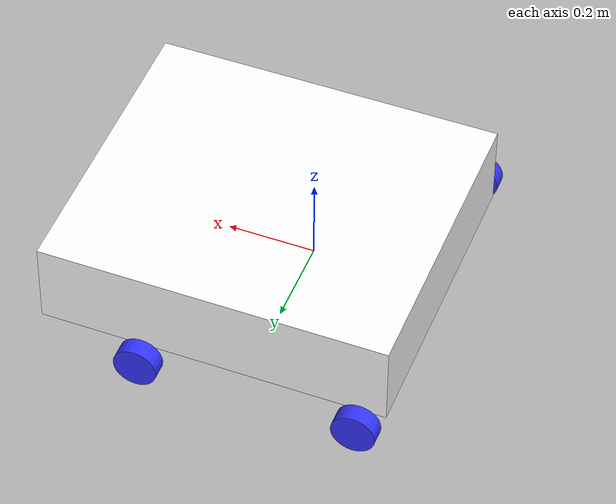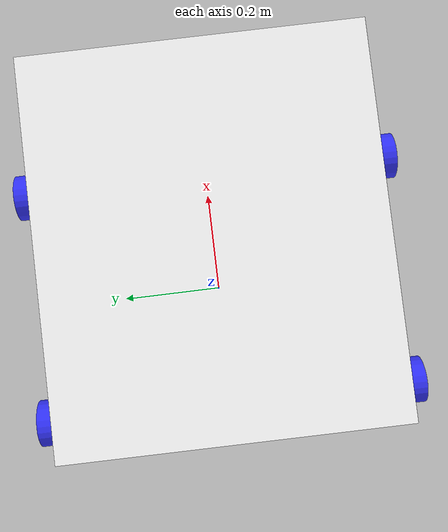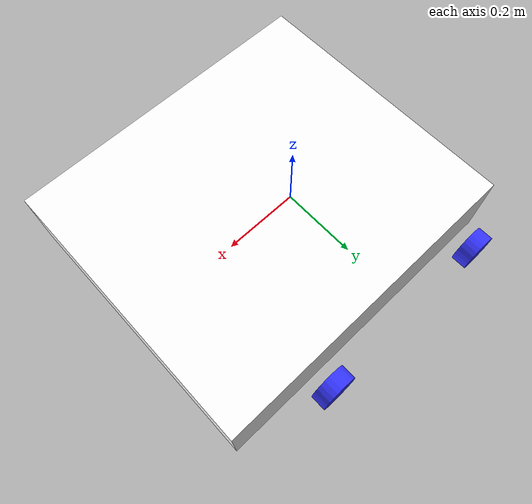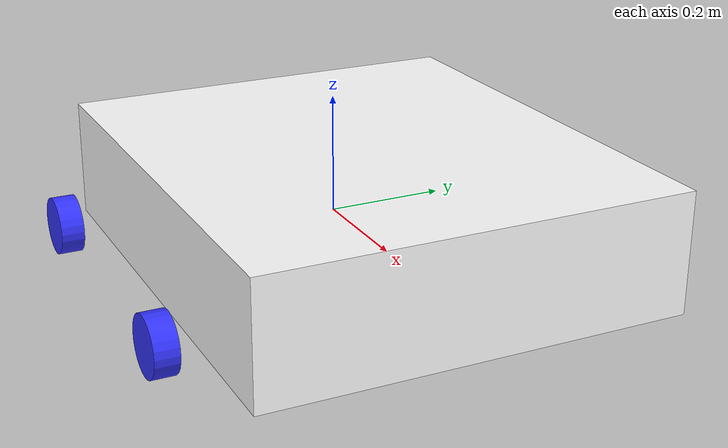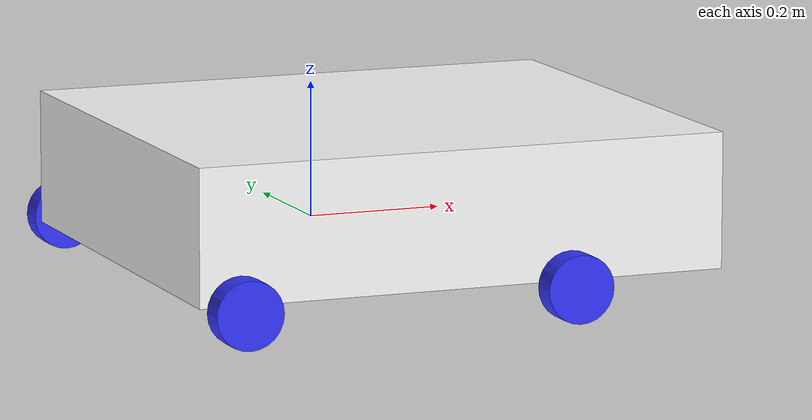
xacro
<?xml version="1.0"?>
<robot xmlns:xacro="http://www.ros.org/wiki/xacro">

     <xacro:include filename="inertial_macros.xacro" />

<material name="white">
    <color rgba="1 1 1 1"/>
</material>

<material name="orange">
    <color rgba="1 0.3 0.1 1"/>
</material>

<material name="blue">
    <color rgba="0.2 0.2 1 1"/>
</material>

<material name="black">
    <color rgba="0 0 0 1"/>
</material>

<link name="base_link">
</link>

    <!-- CHASSIS -->

<joint name="chassis_joint" type="fixed">
    <parent link="base_link"/>
    <child link="chassis"/>
    <origin xyz="-0.1 0 0"/>
</joint>

<link name="chassis">
    <visual>
        <origin xyz="0.2 0 0.050" rpy="0 0 0"/>
        <geometry>
            <box size=".8 0.7 0.2"/>
        </geometry>
        <material name="white"/>
    </visual>
     <collision>
        <origin xyz="0.2 0 0.050" rpy="0 0 0"/>
        <geometry>
            <box size=".8 0.7 0.2"/>
        </geometry>
    </collision>

    <xacro:inertial_box mass="0.1" x="0.3" y="0.3" z="0.15">
        <origin xyz="0.2 0 0.050" rpy="0 0 0"/>
    </xacro:inertial_box>
</link>

    <!-- LEFT WHEEL -->

<joint name="left_wheel_joint" type="continuous">
    <parent link="base_link"/>
    <child link="left_wheel"/>
    <origin xyz="-0.25 -0.4 -0.05" rpy="1.57 0.0 0.0"/>
    <axis xyz="0 0 1"/>
</joint>

<link name="left_wheel">
    <visual>
        <geometry>
             <cylinder length="0.04" radius="0.05" />
        </geometry>
        <material name="blue"/>
    </visual>
    <collision>
        <geometry>
             <cylinder length="0.04" radius="0.05" />
        </geometry>
    </collision>

    <xacro:inertial_cylinder mass="0.1" length="0.05" radius="0.05">
        <origin xyz="0 0 0" rpy="0 0 0"/>
    </xacro:inertial_cylinder>
</link>

<!-- RIGHT WHEEL -->

<joint name="right_wheel_joint" type="continuous">
    <parent link="base_link"/>
    <child link="right_wheel"/>
     <origin xyz="-0.25 0.4 -0.05" rpy="1.57 0.0 0.0"/>
    <axis xyz="0 0 -1"/>
</joint>

<link name="right_wheel">
    <visual>
        <geometry>
            <cylinder length="0.04" radius="0.05" />
        </geometry>
        <material name="blue"/>
    </visual>

    <collision>
         <geometry>
             <cylinder length="0.04" radius="0.05" />
        </geometry>

    </collision>
    <xacro:inertial_cylinder mass="0.1" length="0.05" radius="0.05">
        <origin xyz="0 0 0" rpy="0 0 0"/>
    </xacro:inertial_cylinder>
</link>

    <!-- wheel back left-->
<joint name="wheel_back_left_joint" type="continuous">

    <parent link="base_link"/>
    <child link="wheel_back_left"/>
     <origin xyz="0.25 -0.4 -0.05" rpy="1.57 0.0 0.0"/>
    <axis xyz="0 0 1"/>

</joint>
<link name="wheel_back_left">

    <visual>
        <geometry>
            <cylinder length="0.04" radius="0.05" />
        </geometry>
        <material name="blue"/>
    </visual>

    <collision>
         <geometry>
             <cylinder length="0.04" radius="0.05" />
        </geometry>

    </collision>

     <xacro:inertial_cylinder mass="0.1" length="0.05" radius="0.05">
        <origin xyz="0 0 0" rpy="0 0 0"/>
    </xacro:inertial_cylinder>
</link>

    <!-- wheel back right-->

<joint name="wheel_back_right_joint" type="continuous">

    <parent link="base_link"/>
    <child link="wheel_back_right"/>
     <origin xyz="0.25 0.4 -0.05" rpy="1.57 0.0 0.0"/>
    <axis xyz="0 0 -1"/>

</joint>

<link name="wheel_back_right">

    <visual>
        <geometry>
             <cylinder length="0.04" radius="0.05" />
        </geometry>
        <material name="blue"/>
    </visual>

    <collision>
         <geometry>
             <cylinder length="0.04" radius="0.05" />
        </geometry>

    </collision>

     <xacro:inertial_cylinder mass="0.1" length="0.05" radius="0.05">
        <origin xyz="0 0 0" rpy="0 0 0"/>
    </xacro:inertial_cylinder>
</link>

</robot>
